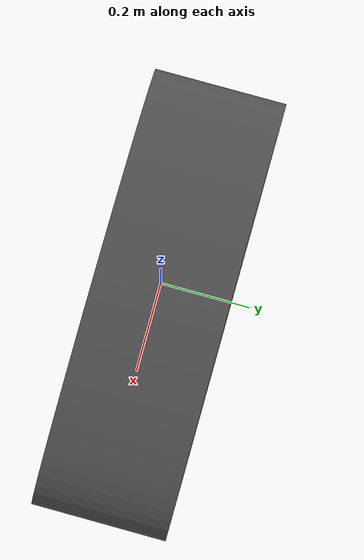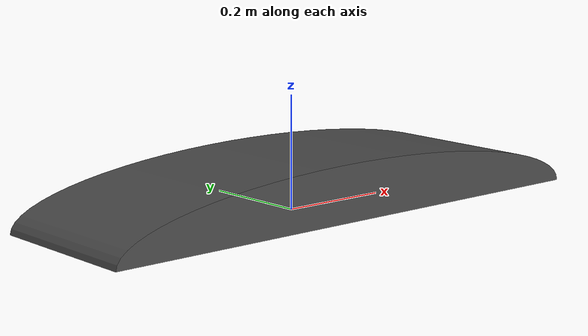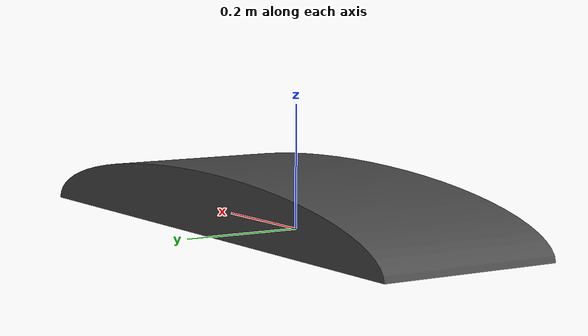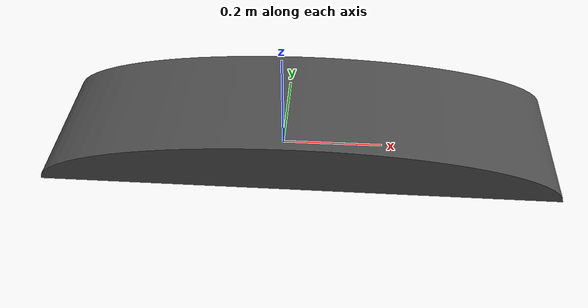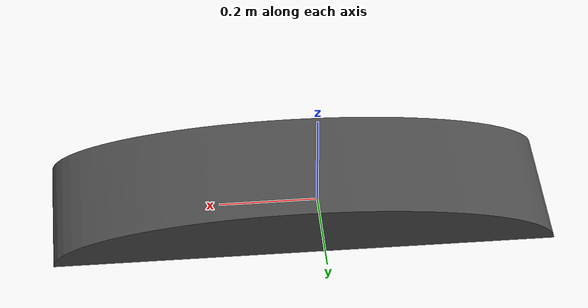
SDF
<?xml version="1.0" ?>
<sdf version="1.6">
  <model name="traffic_hill_3d">
    <static>true</static>
    <link name="link">
      <collision name="collision">
        <geometry>
          <mesh>
            <!-- URI dibetulkan dan nama fail tepat -->
            <uri>model://traffic_hill_3d/meshes/bukit_nxgv.stl</uri>
            <scale>0.001 0.001 0.001</scale>
          </mesh>
        </geometry>
      </collision>
      <visual name="visual">
        <geometry>
          <mesh>
            <uri>model://traffic_hill_3d/meshes/bukit_nxgv.stl</uri>
            <scale>0.001 0.001 0.001</scale>
          </mesh>
        </geometry>
        <material>
          <script>
            <uri>file://media/materials/scripts/gazebo.material</uri>
            <name>Gazebo/DarkGrey</name>
          </script>
        </material>
      </visual>
    </link>
  </model>
</sdf>
